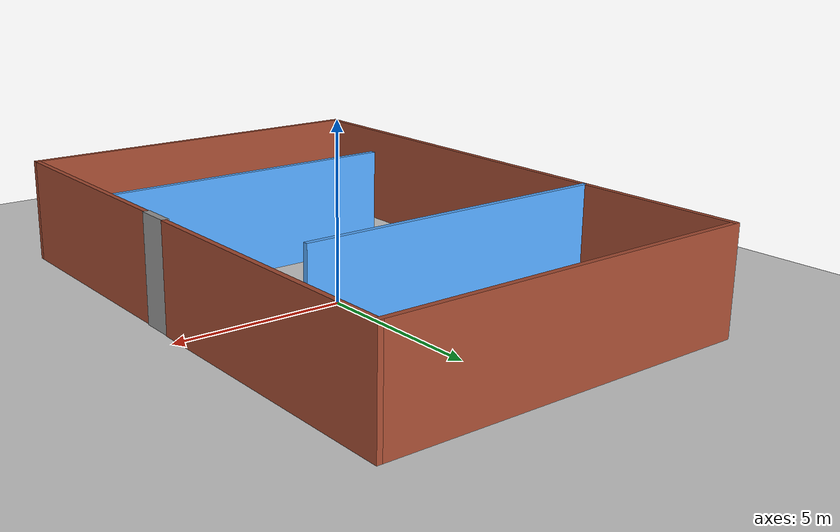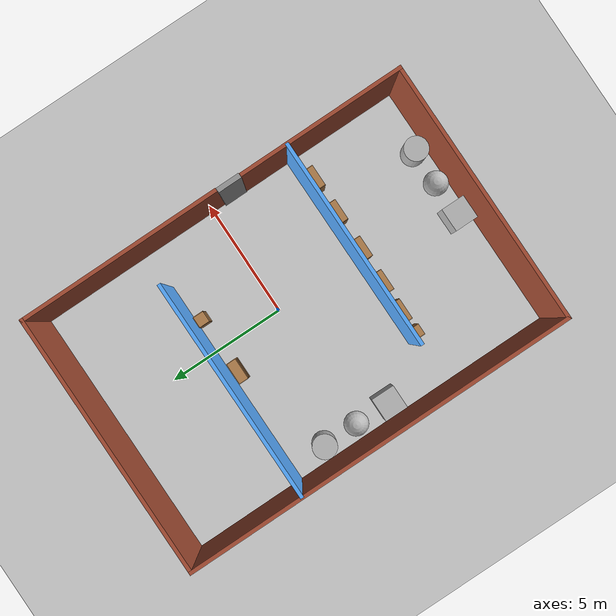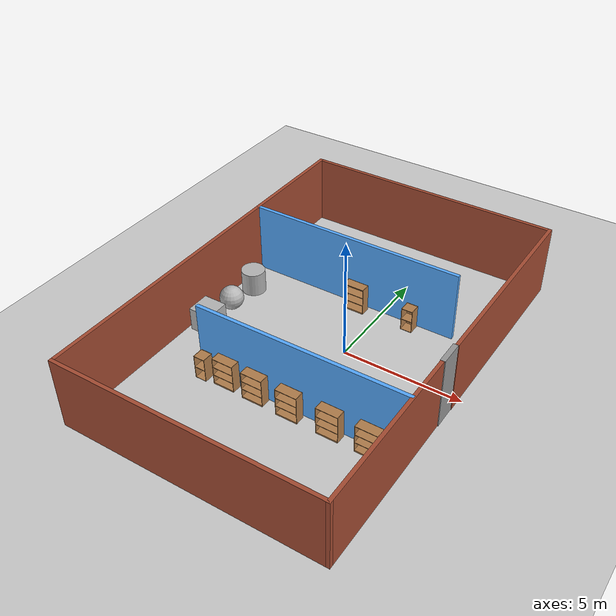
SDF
<sdf version="1.6">
 <world name="default">
  <model name="ground_plane">
   <static>1</static>
   <link name="link">
    <collision name="collision">
     <geometry><plane><normal>0 0 1</normal><size>100 100</size></plane></geometry>
     <surface>
      <contact><collide_bitmask>65535</collide_bitmask></contact>
      <friction><ode><mu>100</mu><mu2>50</mu2></ode></friction>
     </surface>
    </collision>
    <visual name="visual">
     <cast_shadows>0</cast_shadows>
     <geometry><plane><normal>0 0 1</normal><size>100 100</size></plane></geometry>
     <material>
      <script><uri>file://media/materials/scripts/gazebo.material</uri><name>Gazebo/Grey</name></script>
     </material>
    </visual>
   </link>
  </model>
  <model name="dragonHouse">
   <pose>-0.668267 -0.331134 0 0 -0 1.57463</pose>
   <link name="Door_0">
    <collision name="Door_0_Collision">
     <geometry><box><size>0.990813 0.2 3</size></box></geometry>
     <pose>0 0 1.5 0 -0 0</pose>
    </collision>
    <visual name="Door_0_Visual">
     <pose>0 0 1.5 0 -0 0</pose>
     <geometry><box><size>0.990813 0.2 3</size></box></geometry>
     <material>
      <script><uri>file://media/materials/scripts/gazebo.material</uri><name>Gazebo/Grey</name></script>
     </material>
    </visual>
    <pose>-0.750469 -5.40399 0 0 -0 0.00282</pose>
   </link>
   <link name="Wall_0">
    <collision name="Wall_0_Collision">
     <geometry><box><size>7 0.15 3</size></box></geometry>
     <pose>0 0 1.5 0 -0 0</pose>
    </collision>
    <visual name="Wall_0_Visual">
     <pose>0 0 1.5 0 -0 0</pose>
     <geometry><box><size>7 0.15 3</size></box></geometry>
     <material>
      <script><uri>file://media/materials/scripts/gazebo.material</uri><name>Gazebo/Bricks</name></script>
      <ambient>1 1 1 1</ambient>
     </material>
     <meta><layer>0</layer></meta>
    </visual>
    <pose>-4.75 -5.402 0 0 -0 3.14159</pose>
   </link>
   <link name="Wall_1">
    <collision name="Wall_1_Collision">
     <geometry><box><size>11 0.15 3</size></box></geometry>
     <pose>0 0 1.5 0 -0 0</pose>
    </collision>
    <visual name="Wall_1_Visual">
     <pose>0 0 1.5 0 -0 0</pose>
     <geometry><box><size>11 0.15 3</size></box></geometry>
     <material>
      <script><uri>file://media/materials/scripts/gazebo.material</uri><name>Gazebo/Bricks</name></script>
      <ambient>1 1 1 1</ambient>
     </material>
     <meta><layer>0</layer></meta>
    </visual>
    <pose>-8.175 0.023 0 0 -0 1.5708</pose>
   </link>
   <link name="Wall_10">
    <collision name="Wall_10_Collision">
     <geometry><box><size>9.25 0.15 3</size></box></geometry>
     <pose>0 0 1.5 0 -0 0</pose>
    </collision>
    <visual name="Wall_10_Visual">
     <pose>0 0 1.5 0 -0 0</pose>
     <geometry><box><size>9.25 0.15 3</size></box></geometry>
     <material>
      <script><uri>file://media/materials/scripts/gazebo.material</uri><name>Gazebo/Grey</name></script>
      <ambient>0.333333 0.666667 1 1</ambient>
     </material>
     <meta><layer>0</layer></meta>
    </visual>
    <pose>3.371 0.836 0 0 0 -1.5708</pose>
   </link>
   <link name="Wall_2">
    <collision name="Wall_2_Collision">
     <geometry><box><size>16.5 0.15 3</size></box></geometry>
     <pose>0 0 1.5 0 -0 0</pose>
    </collision>
    <visual name="Wall_2_Visual">
     <pose>0 0 1.5 0 -0 0</pose>
     <geometry><box><size>16.5 0.15 3</size></box></geometry>
     <material>
      <script><uri>file://media/materials/scripts/gazebo.material</uri><name>Gazebo/Bricks</name></script>
      <ambient>1 1 1 1</ambient>
     </material>
     <meta><layer>0</layer></meta>
    </visual>
    <pose>0 5.448 0 0 -0 0</pose>
   </link>
   <link name="Wall_3">
    <collision name="Wall_3_Collision">
     <geometry><box><size>11.046 0.15 3</size></box></geometry>
     <pose>0 0 1.5 0 -0 0</pose>
    </collision>
    <visual name="Wall_3_Visual">
     <pose>0 0 1.5 0 -0 0</pose>
     <geometry><box><size>11.046 0.15 3</size></box></geometry>
     <material>
      <script><uri>file://media/materials/scripts/gazebo.material</uri><name>Gazebo/Bricks</name></script>
      <ambient>1 1 1 1</ambient>
     </material>
     <meta><layer>0</layer></meta>
    </visual>
    <pose>8.175 0 0 0 0 -1.5708</pose>
   </link>
   <link name="Wall_4">
    <collision name="Wall_4_Collision">
     <geometry><box><size>8.5 0.15 3</size></box></geometry>
     <pose>0 0 1.5 0 -0 0</pose>
    </collision>
    <visual name="Wall_4_Visual">
     <pose>0 0 1.5 0 -0 0</pose>
     <geometry><box><size>8.5 0.15 3</size></box></geometry>
     <material>
      <script><uri>file://media/materials/scripts/gazebo.material</uri><name>Gazebo/Bricks</name></script>
      <ambient>1 1 1 1</ambient>
     </material>
     <meta><layer>0</layer></meta>
    </visual>
    <pose>4 -5.448 0 0 -0 3.14159</pose>
   </link>
   <link name="Wall_8">
    <collision name="Wall_8_Collision">
     <geometry><box><size>8.75 0.15 3</size></box></geometry>
     <pose>0 0 1.5 0 -0 0</pose>
    </collision>
    <visual name="Wall_8_Visual">
     <pose>0 0 1.5 0 -0 0</pose>
     <geometry><box><size>8.75 0.15 3</size></box></geometry>
     <material>
      <script><uri>file://media/materials/scripts/gazebo.material</uri><name>Gazebo/Grey</name></script>
      <ambient>0.333333 0.666667 1 1</ambient>
     </material>
     <meta><layer>0</layer></meta>
    </visual>
    <pose>-3.276 -1.053 0 0 0 -1.5708</pose>
   </link>
   <static>1</static>
  </model>
  <model name="bookshelf_clone_2">
   <static>1</static>
   <link name="link">
    <inertial><mass>1</mass></inertial>
    <collision name="back">
     <pose>0 0.005 0.6 0 -0 0</pose>
     <geometry><box><size>0.9 0.01 1.2</size></box></geometry>
    </collision>
    <visual name="visual1">
     <pose>0 0.005 0.6 0 -0 0</pose>
     <geometry><box><size>0.9 0.01 1.2</size></box></geometry>
     <material>
      <script><uri>file://media/materials/scripts/gazebo.material</uri><name>Gazebo/Wood</name></script>
     </material>
    </visual>
    <collision name="left_side">
     <pose>0.45 -0.195 0.6 0 -0 0</pose>
     <geometry><box><size>0.02 0.4 1.2</size></box></geometry>
    </collision>
    <visual name="visual2">
     <pose>0.45 -0.195 0.6 0 -0 0</pose>
     <geometry><box><size>0.02 0.4 1.2</size></box></geometry>
     <material>
      <script><uri>file://media/materials/scripts/gazebo.material</uri><name>Gazebo/Wood</name></script>
     </material>
    </visual>
    <collision name="right_side">
     <pose>-0.45 -0.195 0.6 0 -0 0</pose>
     <geometry><box><size>0.02 0.4 1.2</size></box></geometry>
    </collision>
    <visual name="visual3">
     <pose>-0.45 -0.195 0.6 0 -0 0</pose>
     <geometry><box><size>0.02 0.4 1.2</size></box></geometry>
     <material>
      <script><uri>file://media/materials/scripts/gazebo.material</uri><name>Gazebo/Wood</name></script>
     </material>
    </visual>
    <collision name="bottom">
     <pose>0 -0.195 0.03 0 -0 0</pose>
     <geometry><box><size>0.88 0.4 0.06</size></box></geometry>
    </collision>
    <visual name="visual4">
     <pose>0 -0.195 0.03 0 -0 0</pose>
     <geometry><box><size>0.88 0.4 0.06</size></box></geometry>
     <material>
      <script><uri>file://media/materials/scripts/gazebo.material</uri><name>Gazebo/Wood</name></script>
     </material>
    </visual>
    <collision name="top">
     <pose>0 -0.195 1.19 0 -0 0</pose>
     <geometry><box><size>0.88 0.4 0.02</size></box></geometry>
    </collision>
    <visual name="visual5">
     <pose>0 -0.195 1.19 0 -0 0</pose>
     <geometry><box><size>0.88 0.4 0.02</size></box></geometry>
     <material>
      <script><uri>file://media/materials/scripts/gazebo.material</uri><name>Gazebo/Wood</name></script>
     </material>
    </visual>
    <collision name="low_shelf">
     <pose>0 -0.195 0.43 0 -0 0</pose>
     <geometry><box><size>0.88 0.4 0.02</size></box></geometry>
    </collision>
    <visual name="visual6">
     <pose>0 -0.195 0.43 0 -0 0</pose>
     <geometry><box><size>0.88 0.4 0.02</size></box></geometry>
     <material>
      <script><uri>file://media/materials/scripts/gazebo.material</uri><name>Gazebo/Wood</name></script>
     </material>
    </visual>
    <collision name="high_shelf">
     <pose>0 -0.195 0.8 0 -0 0</pose>
     <geometry><box><size>0.88 0.4 0.02</size></box></geometry>
    </collision>
    <visual name="visual7">
     <pose>0 -0.195 0.8 0 -0 0</pose>
     <geometry><box><size>0.88 0.4 0.02</size></box></geometry>
     <material>
      <script><uri>file://media/materials/scripts/gazebo.material</uri><name>Gazebo/Wood</name></script>
     </material>
    </visual>
   </link>
   <pose>-1.08409 2.80907 0 0 -0 0</pose>
  </model>
  <model name="bookshelf_clone_7">
   <static>1</static>
   <link name="link">
    <inertial><mass>1</mass></inertial>
    <collision name="back">
     <pose>0 0.005 0.6 0 -0 0</pose>
     <geometry><box><size>0.9 0.01 1.2</size></box></geometry>
    </collision>
    <visual name="visual1">
     <pose>0 0.005 0.6 0 -0 0</pose>
     <geometry><box><size>0.9 0.01 1.2</size></box></geometry>
     <material>
      <script><uri>file://media/materials/scripts/gazebo.material</uri><name>Gazebo/Wood</name></script>
     </material>
    </visual>
    <collision name="left_side">
     <pose>0.45 -0.195 0.6 0 -0 0</pose>
     <geometry><box><size>0.02 0.4 1.2</size></box></geometry>
    </collision>
    <visual name="visual2">
     <pose>0.45 -0.195 0.6 0 -0 0</pose>
     <geometry><box><size>0.02 0.4 1.2</size></box></geometry>
     <material>
      <script><uri>file://media/materials/scripts/gazebo.material</uri><name>Gazebo/Wood</name></script>
     </material>
    </visual>
    <collision name="right_side">
     <pose>-0.45 -0.195 0.6 0 -0 0</pose>
     <geometry><box><size>0.02 0.4 1.2</size></box></geometry>
    </collision>
    <visual name="visual3">
     <pose>-0.45 -0.195 0.6 0 -0 0</pose>
     <geometry><box><size>0.02 0.4 1.2</size></box></geometry>
     <material>
      <script><uri>file://media/materials/scripts/gazebo.material</uri><name>Gazebo/Wood</name></script>
     </material>
    </visual>
    <collision name="bottom">
     <pose>0 -0.195 0.03 0 -0 0</pose>
     <geometry><box><size>0.88 0.4 0.06</size></box></geometry>
    </collision>
    <visual name="visual4">
     <pose>0 -0.195 0.03 0 -0 0</pose>
     <geometry><box><size>0.88 0.4 0.06</size></box></geometry>
     <material>
      <script><uri>file://media/materials/scripts/gazebo.material</uri><name>Gazebo/Wood</name></script>
     </material>
    </visual>
    <collision name="top">
     <pose>0 -0.195 1.19 0 -0 0</pose>
     <geometry><box><size>0.88 0.4 0.02</size></box></geometry>
    </collision>
    <visual name="visual5">
     <pose>0 -0.195 1.19 0 -0 0</pose>
     <geometry><box><size>0.88 0.4 0.02</size></box></geometry>
     <material>
      <script><uri>file://media/materials/scripts/gazebo.material</uri><name>Gazebo/Wood</name></script>
     </material>
    </visual>
    <collision name="low_shelf">
     <pose>0 -0.195 0.43 0 -0 0</pose>
     <geometry><box><size>0.88 0.4 0.02</size></box></geometry>
    </collision>
    <visual name="visual6">
     <pose>0 -0.195 0.43 0 -0 0</pose>
     <geometry><box><size>0.88 0.4 0.02</size></box></geometry>
     <material>
      <script><uri>file://media/materials/scripts/gazebo.material</uri><name>Gazebo/Wood</name></script>
     </material>
    </visual>
    <collision name="high_shelf">
     <pose>0 -0.195 0.8 0 -0 0</pose>
     <geometry><box><size>0.88 0.4 0.02</size></box></geometry>
    </collision>
    <visual name="visual7">
     <pose>0 -0.195 0.8 0 -0 0</pose>
     <geometry><box><size>0.88 0.4 0.02</size></box></geometry>
     <material>
      <script><uri>file://media/materials/scripts/gazebo.material</uri><name>Gazebo/Wood</name></script>
     </material>
    </visual>
   </link>
   <pose>-2.65907 -3.69157 0 0 -0 0</pose>
  </model>
  <model name="bookshelf_clone_8">
   <static>1</static>
   <link name="link">
    <inertial><mass>1</mass></inertial>
    <collision name="back">
     <pose>0 0.005 0.6 0 -0 0</pose>
     <geometry><box><size>0.9 0.01 1.2</size></box></geometry>
    </collision>
    <visual name="visual1">
     <pose>0 0.005 0.6 0 -0 0</pose>
     <geometry><box><size>0.9 0.01 1.2</size></box></geometry>
     <material>
      <script><uri>file://media/materials/scripts/gazebo.material</uri><name>Gazebo/Wood</name></script>
     </material>
    </visual>
    <collision name="left_side">
     <pose>0.45 -0.195 0.6 0 -0 0</pose>
     <geometry><box><size>0.02 0.4 1.2</size></box></geometry>
    </collision>
    <visual name="visual2">
     <pose>0.45 -0.195 0.6 0 -0 0</pose>
     <geometry><box><size>0.02 0.4 1.2</size></box></geometry>
     <material>
      <script><uri>file://media/materials/scripts/gazebo.material</uri><name>Gazebo/Wood</name></script>
     </material>
    </visual>
    <collision name="right_side">
     <pose>-0.45 -0.195 0.6 0 -0 0</pose>
     <geometry><box><size>0.02 0.4 1.2</size></box></geometry>
    </collision>
    <visual name="visual3">
     <pose>-0.45 -0.195 0.6 0 -0 0</pose>
     <geometry><box><size>0.02 0.4 1.2</size></box></geometry>
     <material>
      <script><uri>file://media/materials/scripts/gazebo.material</uri><name>Gazebo/Wood</name></script>
     </material>
    </visual>
    <collision name="bottom">
     <pose>0 -0.195 0.03 0 -0 0</pose>
     <geometry><box><size>0.88 0.4 0.06</size></box></geometry>
    </collision>
    <visual name="visual4">
     <pose>0 -0.195 0.03 0 -0 0</pose>
     <geometry><box><size>0.88 0.4 0.06</size></box></geometry>
     <material>
      <script><uri>file://media/materials/scripts/gazebo.material</uri><name>Gazebo/Wood</name></script>
     </material>
    </visual>
    <collision name="top">
     <pose>0 -0.195 1.19 0 -0 0</pose>
     <geometry><box><size>0.88 0.4 0.02</size></box></geometry>
    </collision>
    <visual name="visual5">
     <pose>0 -0.195 1.19 0 -0 0</pose>
     <geometry><box><size>0.88 0.4 0.02</size></box></geometry>
     <material>
      <script><uri>file://media/materials/scripts/gazebo.material</uri><name>Gazebo/Wood</name></script>
     </material>
    </visual>
    <collision name="low_shelf">
     <pose>0 -0.195 0.43 0 -0 0</pose>
     <geometry><box><size>0.88 0.4 0.02</size></box></geometry>
    </collision>
    <visual name="visual6">
     <pose>0 -0.195 0.43 0 -0 0</pose>
     <geometry><box><size>0.88 0.4 0.02</size></box></geometry>
     <material>
      <script><uri>file://media/materials/scripts/gazebo.material</uri><name>Gazebo/Wood</name></script>
     </material>
    </visual>
    <collision name="high_shelf">
     <pose>0 -0.195 0.8 0 -0 0</pose>
     <geometry><box><size>0.88 0.4 0.02</size></box></geometry>
    </collision>
    <visual name="visual7">
     <pose>0 -0.195 0.8 0 -0 0</pose>
     <geometry><box><size>0.88 0.4 0.02</size></box></geometry>
     <material>
      <script><uri>file://media/materials/scripts/gazebo.material</uri><name>Gazebo/Wood</name></script>
     </material>
    </visual>
   </link>
   <pose>-1.33572 -3.73157 0 0 -0 0</pose>
  </model>
  <model name="bookshelf_clone_9">
   <static>1</static>
   <link name="link">
    <inertial><mass>1</mass></inertial>
    <collision name="back">
     <pose>0 0.005 0.6 0 -0 0</pose>
     <geometry><box><size>0.9 0.01 1.2</size></box></geometry>
    </collision>
    <visual name="visual1">
     <pose>0 0.005 0.6 0 -0 0</pose>
     <geometry><box><size>0.9 0.01 1.2</size></box></geometry>
     <material>
      <script><uri>file://media/materials/scripts/gazebo.material</uri><name>Gazebo/Wood</name></script>
     </material>
    </visual>
    <collision name="left_side">
     <pose>0.45 -0.195 0.6 0 -0 0</pose>
     <geometry><box><size>0.02 0.4 1.2</size></box></geometry>
    </collision>
    <visual name="visual2">
     <pose>0.45 -0.195 0.6 0 -0 0</pose>
     <geometry><box><size>0.02 0.4 1.2</size></box></geometry>
     <material>
      <script><uri>file://media/materials/scripts/gazebo.material</uri><name>Gazebo/Wood</name></script>
     </material>
    </visual>
    <collision name="right_side">
     <pose>-0.45 -0.195 0.6 0 -0 0</pose>
     <geometry><box><size>0.02 0.4 1.2</size></box></geometry>
    </collision>
    <visual name="visual3">
     <pose>-0.45 -0.195 0.6 0 -0 0</pose>
     <geometry><box><size>0.02 0.4 1.2</size></box></geometry>
     <material>
      <script><uri>file://media/materials/scripts/gazebo.material</uri><name>Gazebo/Wood</name></script>
     </material>
    </visual>
    <collision name="bottom">
     <pose>0 -0.195 0.03 0 -0 0</pose>
     <geometry><box><size>0.88 0.4 0.06</size></box></geometry>
    </collision>
    <visual name="visual4">
     <pose>0 -0.195 0.03 0 -0 0</pose>
     <geometry><box><size>0.88 0.4 0.06</size></box></geometry>
     <material>
      <script><uri>file://media/materials/scripts/gazebo.material</uri><name>Gazebo/Wood</name></script>
     </material>
    </visual>
    <collision name="top">
     <pose>0 -0.195 1.19 0 -0 0</pose>
     <geometry><box><size>0.88 0.4 0.02</size></box></geometry>
    </collision>
    <visual name="visual5">
     <pose>0 -0.195 1.19 0 -0 0</pose>
     <geometry><box><size>0.88 0.4 0.02</size></box></geometry>
     <material>
      <script><uri>file://media/materials/scripts/gazebo.material</uri><name>Gazebo/Wood</name></script>
     </material>
    </visual>
    <collision name="low_shelf">
     <pose>0 -0.195 0.43 0 -0 0</pose>
     <geometry><box><size>0.88 0.4 0.02</size></box></geometry>
    </collision>
    <visual name="visual6">
     <pose>0 -0.195 0.43 0 -0 0</pose>
     <geometry><box><size>0.88 0.4 0.02</size></box></geometry>
     <material>
      <script><uri>file://media/materials/scripts/gazebo.material</uri><name>Gazebo/Wood</name></script>
     </material>
    </visual>
    <collision name="high_shelf">
     <pose>0 -0.195 0.8 0 -0 0</pose>
     <geometry><box><size>0.88 0.4 0.02</size></box></geometry>
    </collision>
    <visual name="visual7">
     <pose>0 -0.195 0.8 0 -0 0</pose>
     <geometry><box><size>0.88 0.4 0.02</size></box></geometry>
     <material>
      <script><uri>file://media/materials/scripts/gazebo.material</uri><name>Gazebo/Wood</name></script>
     </material>
    </visual>
   </link>
   <pose>0.181637 -3.77018 0 0 -0 0</pose>
  </model>
  <model name="bookshelf_clone_10">
   <static>1</static>
   <link name="link">
    <inertial><mass>1</mass></inertial>
    <collision name="back">
     <pose>0 0.005 0.6 0 -0 0</pose>
     <geometry><box><size>0.9 0.01 1.2</size></box></geometry>
    </collision>
    <visual name="visual1">
     <pose>0 0.005 0.6 0 -0 0</pose>
     <geometry><box><size>0.9 0.01 1.2</size></box></geometry>
     <material>
      <script><uri>file://media/materials/scripts/gazebo.material</uri><name>Gazebo/Wood</name></script>
     </material>
    </visual>
    <collision name="left_side">
     <pose>0.45 -0.195 0.6 0 -0 0</pose>
     <geometry><box><size>0.02 0.4 1.2</size></box></geometry>
    </collision>
    <visual name="visual2">
     <pose>0.45 -0.195 0.6 0 -0 0</pose>
     <geometry><box><size>0.02 0.4 1.2</size></box></geometry>
     <material>
      <script><uri>file://media/materials/scripts/gazebo.material</uri><name>Gazebo/Wood</name></script>
     </material>
    </visual>
    <collision name="right_side">
     <pose>-0.45 -0.195 0.6 0 -0 0</pose>
     <geometry><box><size>0.02 0.4 1.2</size></box></geometry>
    </collision>
    <visual name="visual3">
     <pose>-0.45 -0.195 0.6 0 -0 0</pose>
     <geometry><box><size>0.02 0.4 1.2</size></box></geometry>
     <material>
      <script><uri>file://media/materials/scripts/gazebo.material</uri><name>Gazebo/Wood</name></script>
     </material>
    </visual>
    <collision name="bottom">
     <pose>0 -0.195 0.03 0 -0 0</pose>
     <geometry><box><size>0.88 0.4 0.06</size></box></geometry>
    </collision>
    <visual name="visual4">
     <pose>0 -0.195 0.03 0 -0 0</pose>
     <geometry><box><size>0.88 0.4 0.06</size></box></geometry>
     <material>
      <script><uri>file://media/materials/scripts/gazebo.material</uri><name>Gazebo/Wood</name></script>
     </material>
    </visual>
    <collision name="top">
     <pose>0 -0.195 1.19 0 -0 0</pose>
     <geometry><box><size>0.88 0.4 0.02</size></box></geometry>
    </collision>
    <visual name="visual5">
     <pose>0 -0.195 1.19 0 -0 0</pose>
     <geometry><box><size>0.88 0.4 0.02</size></box></geometry>
     <material>
      <script><uri>file://media/materials/scripts/gazebo.material</uri><name>Gazebo/Wood</name></script>
     </material>
    </visual>
    <collision name="low_shelf">
     <pose>0 -0.195 0.43 0 -0 0</pose>
     <geometry><box><size>0.88 0.4 0.02</size></box></geometry>
    </collision>
    <visual name="visual6">
     <pose>0 -0.195 0.43 0 -0 0</pose>
     <geometry><box><size>0.88 0.4 0.02</size></box></geometry>
     <material>
      <script><uri>file://media/materials/scripts/gazebo.material</uri><name>Gazebo/Wood</name></script>
     </material>
    </visual>
    <collision name="high_shelf">
     <pose>0 -0.195 0.8 0 -0 0</pose>
     <geometry><box><size>0.88 0.4 0.02</size></box></geometry>
    </collision>
    <visual name="visual7">
     <pose>0 -0.195 0.8 0 -0 0</pose>
     <geometry><box><size>0.88 0.4 0.02</size></box></geometry>
     <material>
      <script><uri>file://media/materials/scripts/gazebo.material</uri><name>Gazebo/Wood</name></script>
     </material>
    </visual>
   </link>
   <pose>1.86833 -3.75902 0 0 -0 0</pose>
  </model>
  <model name="bookshelf_clone_11">
   <static>1</static>
   <link name="link">
    <inertial><mass>1</mass></inertial>
    <collision name="back">
     <pose>0 0.005 0.6 0 -0 0</pose>
     <geometry><box><size>0.9 0.01 1.2</size></box></geometry>
    </collision>
    <visual name="visual1">
     <pose>0 0.005 0.6 0 -0 0</pose>
     <geometry><box><size>0.9 0.01 1.2</size></box></geometry>
     <material>
      <script><uri>file://media/materials/scripts/gazebo.material</uri><name>Gazebo/Wood</name></script>
     </material>
    </visual>
    <collision name="left_side">
     <pose>0.45 -0.195 0.6 0 -0 0</pose>
     <geometry><box><size>0.02 0.4 1.2</size></box></geometry>
    </collision>
    <visual name="visual2">
     <pose>0.45 -0.195 0.6 0 -0 0</pose>
     <geometry><box><size>0.02 0.4 1.2</size></box></geometry>
     <material>
      <script><uri>file://media/materials/scripts/gazebo.material</uri><name>Gazebo/Wood</name></script>
     </material>
    </visual>
    <collision name="right_side">
     <pose>-0.45 -0.195 0.6 0 -0 0</pose>
     <geometry><box><size>0.02 0.4 1.2</size></box></geometry>
    </collision>
    <visual name="visual3">
     <pose>-0.45 -0.195 0.6 0 -0 0</pose>
     <geometry><box><size>0.02 0.4 1.2</size></box></geometry>
     <material>
      <script><uri>file://media/materials/scripts/gazebo.material</uri><name>Gazebo/Wood</name></script>
     </material>
    </visual>
    <collision name="bottom">
     <pose>0 -0.195 0.03 0 -0 0</pose>
     <geometry><box><size>0.88 0.4 0.06</size></box></geometry>
    </collision>
    <visual name="visual4">
     <pose>0 -0.195 0.03 0 -0 0</pose>
     <geometry><box><size>0.88 0.4 0.06</size></box></geometry>
     <material>
      <script><uri>file://media/materials/scripts/gazebo.material</uri><name>Gazebo/Wood</name></script>
     </material>
    </visual>
    <collision name="top">
     <pose>0 -0.195 1.19 0 -0 0</pose>
     <geometry><box><size>0.88 0.4 0.02</size></box></geometry>
    </collision>
    <visual name="visual5">
     <pose>0 -0.195 1.19 0 -0 0</pose>
     <geometry><box><size>0.88 0.4 0.02</size></box></geometry>
     <material>
      <script><uri>file://media/materials/scripts/gazebo.material</uri><name>Gazebo/Wood</name></script>
     </material>
    </visual>
    <collision name="low_shelf">
     <pose>0 -0.195 0.43 0 -0 0</pose>
     <geometry><box><size>0.88 0.4 0.02</size></box></geometry>
    </collision>
    <visual name="visual6">
     <pose>0 -0.195 0.43 0 -0 0</pose>
     <geometry><box><size>0.88 0.4 0.02</size></box></geometry>
     <material>
      <script><uri>file://media/materials/scripts/gazebo.material</uri><name>Gazebo/Wood</name></script>
     </material>
    </visual>
    <collision name="high_shelf">
     <pose>0 -0.195 0.8 0 -0 0</pose>
     <geometry><box><size>0.88 0.4 0.02</size></box></geometry>
    </collision>
    <visual name="visual7">
     <pose>0 -0.195 0.8 0 -0 0</pose>
     <geometry><box><size>0.88 0.4 0.02</size></box></geometry>
     <material>
      <script><uri>file://media/materials/scripts/gazebo.material</uri><name>Gazebo/Wood</name></script>
     </material>
    </visual>
   </link>
   <pose>3.43366 -3.76089 0 0 -0 0</pose>
  </model>
  <model name="cabinet_0">
   <static>1</static>
   <link name="cabinet_bottom_plate">
    <inertial>
     <pose>0 0 -1 0 -0 0</pose>
     <inertia><ixx>2.05</ixx><ixy>0</ixy><ixz>0</ixz><iyy>2.05</iyy><iyz>0</iyz><izz>2.05</izz></inertia>
     <mass>25</mass>
    </inertial>
    <collision name="cabinet_bottom_plate_geom">
     <pose>0 0 0.01 0 -0 0</pose>
     <geometry><box><size>0.45 0.45 0.02</size></box></geometry>
    </collision>
    <visual name="cabinet_bottom_plate_geom_visual">
     <pose>0 0 0.01 0 -0 0</pose>
     <geometry><box><size>0.45 0.45 0.02</size></box></geometry>
     <material>
      <script><uri>file://media/materials/scripts/gazebo.material</uri><name>Gazebo/Wood</name></script>
     </material>
    </visual>
    <collision name="cabinet_bottom_plate_geom_cabinet_back_plate">
     <pose>0.235 0 0.51 0 -0 0</pose>
     <geometry><box><size>0.02 0.45 1.02</size></box></geometry>
    </collision>
    <visual name="cabinet_bottom_plate_geom_cabinet_back_plate_visual">
     <pose>0.235 0 0.51 0 -0 0</pose>
     <geometry><box><size>0.02 0.45 1.02</size></box></geometry>
     <material>
      <script><uri>file://media/materials/scripts/gazebo.material</uri><name>Gazebo/Wood</name></script>
     </material>
    </visual>
    <collision name="cabinet_bottom_plate_geom_cabinet_left_plate">
     <pose>0 0.235 0.51 0 -0 0</pose>
     <geometry><box><size>0.45 0.02 1.02</size></box></geometry>
    </collision>
    <visual name="cabinet_bottom_plate_geom_cabinet_left_plate_visual">
     <pose>0 0.235 0.51 0 -0 0</pose>
     <geometry><box><size>0.45 0.02 1.02</size></box></geometry>
     <material>
      <script><uri>file://media/materials/scripts/gazebo.material</uri><name>Gazebo/Wood</name></script>
     </material>
    </visual>
    <collision name="cabinet_bottom_plate_geom_cabinet_middle_plate">
     <pose>0 0 0.51 0 -0 0</pose>
     <geometry><box><size>0.45 0.45 0.02</size></box></geometry>
    </collision>
    <visual name="cabinet_bottom_plate_geom_cabinet_middle_plate_visual">
     <pose>0 0 0.51 0 -0 0</pose>
     <geometry><box><size>0.45 0.45 0.02</size></box></geometry>
     <material>
      <script><uri>file://media/materials/scripts/gazebo.material</uri><name>Gazebo/Wood</name></script>
     </material>
    </visual>
    <collision name="cabinet_bottom_plate_geom_cabinet_right_plate">
     <pose>0 -0.235 0.51 0 -0 0</pose>
     <geometry><box><size>0.45 0.02 1.02</size></box></geometry>
    </collision>
    <visual name="cabinet_bottom_plate_geom_cabinet_right_plate_visual">
     <pose>0 -0.235 0.51 0 -0 0</pose>
     <geometry><box><size>0.45 0.02 1.02</size></box></geometry>
     <material>
      <script><uri>file://media/materials/scripts/gazebo.material</uri><name>Gazebo/Wood</name></script>
     </material>
    </visual>
    <collision name="cabinet_bottom_plate_geom_cabinet_top_plate">
     <pose>0 0 1.01 0 -0 0</pose>
     <geometry><box><size>0.45 0.45 0.02</size></box></geometry>
    </collision>
    <visual name="cabinet_bottom_plate_geom_cabinet_top_plate_visual">
     <pose>0 0 1.01 0 -0 0</pose>
     <geometry><box><size>0.45 0.45 0.02</size></box></geometry>
     <material>
      <script><uri>file://media/materials/scripts/gazebo.material</uri><name>Gazebo/Wood</name></script>
     </material>
    </visual>
   </link>
   <pose>1.34742 2.67421 0 0 -0 1.57053</pose>
  </model>
  <model name="cabinet_0_clone_1">
   <static>1</static>
   <link name="cabinet_bottom_plate">
    <inertial>
     <pose>0 0 -1 0 -0 0</pose>
     <inertia><ixx>2.05</ixx><ixy>0</ixy><ixz>0</ixz><iyy>2.05</iyy><iyz>0</iyz><izz>2.05</izz></inertia>
     <mass>25</mass>
    </inertial>
    <collision name="cabinet_bottom_plate_geom">
     <pose>0 0 0.01 0 -0 0</pose>
     <geometry><box><size>0.45 0.45 0.02</size></box></geometry>
    </collision>
    <visual name="cabinet_bottom_plate_geom_visual">
     <pose>0 0 0.01 0 -0 0</pose>
     <geometry><box><size>0.45 0.45 0.02</size></box></geometry>
     <material>
      <script><uri>file://media/materials/scripts/gazebo.material</uri><name>Gazebo/Wood</name></script>
     </material>
    </visual>
    <collision name="cabinet_bottom_plate_geom_cabinet_back_plate">
     <pose>0.235 0 0.51 0 -0 0</pose>
     <geometry><box><size>0.02 0.45 1.02</size></box></geometry>
    </collision>
    <visual name="cabinet_bottom_plate_geom_cabinet_back_plate_visual">
     <pose>0.235 0 0.51 0 -0 0</pose>
     <geometry><box><size>0.02 0.45 1.02</size></box></geometry>
     <material>
      <script><uri>file://media/materials/scripts/gazebo.material</uri><name>Gazebo/Wood</name></script>
     </material>
    </visual>
    <collision name="cabinet_bottom_plate_geom_cabinet_left_plate">
     <pose>0 0.235 0.51 0 -0 0</pose>
     <geometry><box><size>0.45 0.02 1.02</size></box></geometry>
    </collision>
    <visual name="cabinet_bottom_plate_geom_cabinet_left_plate_visual">
     <pose>0 0.235 0.51 0 -0 0</pose>
     <geometry><box><size>0.45 0.02 1.02</size></box></geometry>
     <material>
      <script><uri>file://media/materials/scripts/gazebo.material</uri><name>Gazebo/Wood</name></script>
     </material>
    </visual>
    <collision name="cabinet_bottom_plate_geom_cabinet_middle_plate">
     <pose>0 0 0.51 0 -0 0</pose>
     <geometry><box><size>0.45 0.45 0.02</size></box></geometry>
    </collision>
    <visual name="cabinet_bottom_plate_geom_cabinet_middle_plate_visual">
     <pose>0 0 0.51 0 -0 0</pose>
     <geometry><box><size>0.45 0.45 0.02</size></box></geometry>
     <material>
      <script><uri>file://media/materials/scripts/gazebo.material</uri><name>Gazebo/Wood</name></script>
     </material>
    </visual>
    <collision name="cabinet_bottom_plate_geom_cabinet_right_plate">
     <pose>0 -0.235 0.51 0 -0 0</pose>
     <geometry><box><size>0.45 0.02 1.02</size></box></geometry>
    </collision>
    <visual name="cabinet_bottom_plate_geom_cabinet_right_plate_visual">
     <pose>0 -0.235 0.51 0 -0 0</pose>
     <geometry><box><size>0.45 0.02 1.02</size></box></geometry>
     <material>
      <script><uri>file://media/materials/scripts/gazebo.material</uri><name>Gazebo/Wood</name></script>
     </material>
    </visual>
    <collision name="cabinet_bottom_plate_geom_cabinet_top_plate">
     <pose>0 0 1.01 0 -0 0</pose>
     <geometry><box><size>0.45 0.45 0.02</size></box></geometry>
    </collision>
    <visual name="cabinet_bottom_plate_geom_cabinet_top_plate_visual">
     <pose>0 0 1.01 0 -0 0</pose>
     <geometry><box><size>0.45 0.45 0.02</size></box></geometry>
     <material>
      <script><uri>file://media/materials/scripts/gazebo.material</uri><name>Gazebo/Wood</name></script>
     </material>
    </visual>
   </link>
   <pose>-3.66133 -3.94973 0 0 -0 1.57053</pose>
  </model>
  <model name="textured_shapes">
   <pose>0.721547 -7.87644 0.5 0 0 -1.56921</pose>
   <link name="box">
    <pose>0 -1.5 0 0 -0 0</pose>
    <collision name="collision"><geometry><box><size>1 1 1</size></box></geometry></collision>
    <visual name="visual">
     <geometry><box><size>1 1 1</size></box></geometry>
     <material>
      <script>
       <uri>model://textured_shapes/materials/scripts</uri>
       <uri>model://textured_shapes/materials/textures</uri>
       <name>TexturedShape/Squares</name>
      </script>
     </material>
    </visual>
    <inertial>
     <inertia><ixx>1</ixx><ixy>0</ixy><ixz>0</ixz><iyy>1</iyy><iyz>0</iyz><izz>1</izz></inertia>
     <mass>1</mass>
    </inertial>
   </link>
   <link name="sphere">
    <collision name="collision"><geometry><sphere><radius>0.5</radius></sphere></geometry></collision>
    <visual name="visual">
     <geometry><sphere><radius>0.5</radius></sphere></geometry>
     <material>
      <script>
       <uri>model://textured_shapes/materials/scripts</uri>
       <uri>model://textured_shapes/materials/textures</uri>
       <name>TexturedShape/Squares</name>
      </script>
     </material>
    </visual>
    <inertial>
     <inertia><ixx>1</ixx><ixy>0</ixy><ixz>0</ixz><iyy>1</iyy><iyz>0</iyz><izz>1</izz></inertia>
     <mass>1</mass>
    </inertial>
   </link>
   <link name="cylinder">
    <pose>0 1.5 0 0 -0 0</pose>
    <collision name="collision">
     <geometry><cylinder><radius>0.5</radius><length>1</length></cylinder></geometry>
    </collision>
    <visual name="visual">
     <geometry><cylinder><radius>0.5</radius><length>1</length></cylinder></geometry>
     <material>
      <script>
       <uri>model://textured_shapes/materials/scripts</uri>
       <uri>model://textured_shapes/materials/textures</uri>
       <name>TexturedShape/Squares</name>
      </script>
     </material>
    </visual>
    <inertial>
     <inertia><ixx>1</ixx><ixy>0</ixy><ixz>0</ixz><iyy>1</iyy><iyz>0</iyz><izz>1</izz></inertia>
     <mass>1</mass>
    </inertial>
   </link>
  </model>
  <model name="textured_shapes_0">
   <pose>-5.37107 -0.057931 0.5 0 -0 0</pose>
   <link name="box">
    <pose>0 -1.5 0 0 -0 0</pose>
    <collision name="collision"><geometry><box><size>1 1 1</size></box></geometry></collision>
    <visual name="visual">
     <geometry><box><size>1 1 1</size></box></geometry>
     <material>
      <script>
       <uri>model://textured_shapes/materials/scripts</uri>
       <uri>model://textured_shapes/materials/textures</uri>
       <name>TexturedShape/Squares</name>
      </script>
     </material>
    </visual>
    <inertial>
     <inertia><ixx>1</ixx><ixy>0</ixy><ixz>0</ixz><iyy>1</iyy><iyz>0</iyz><izz>1</izz></inertia>
     <mass>1</mass>
    </inertial>
   </link>
   <link name="sphere">
    <collision name="collision"><geometry><sphere><radius>0.5</radius></sphere></geometry></collision>
    <visual name="visual">
     <geometry><sphere><radius>0.5</radius></sphere></geometry>
     <material>
      <script>
       <uri>model://textured_shapes/materials/scripts</uri>
       <uri>model://textured_shapes/materials/textures</uri>
       <name>TexturedShape/Squares</name>
      </script>
     </material>
    </visual>
    <inertial>
     <inertia><ixx>1</ixx><ixy>0</ixy><ixz>0</ixz><iyy>1</iyy><iyz>0</iyz><izz>1</izz></inertia>
     <mass>1</mass>
    </inertial>
   </link>
   <link name="cylinder">
    <pose>0 1.5 0 0 -0 0</pose>
    <collision name="collision">
     <geometry><cylinder><radius>0.5</radius><length>1</length></cylinder></geometry>
    </collision>
    <visual name="visual">
     <geometry><cylinder><radius>0.5</radius><length>1</length></cylinder></geometry>
     <material>
      <script>
       <uri>model://textured_shapes/materials/scripts</uri>
       <uri>model://textured_shapes/materials/textures</uri>
       <name>TexturedShape/Squares</name>
      </script>
     </material>
    </visual>
    <inertial>
     <inertia><ixx>1</ixx><ixy>0</ixy><ixz>0</ixz><iyy>1</iyy><iyz>0</iyz><izz>1</izz></inertia>
     <mass>1</mass>
    </inertial>
   </link>
  </model>
 </world>
</sdf>
